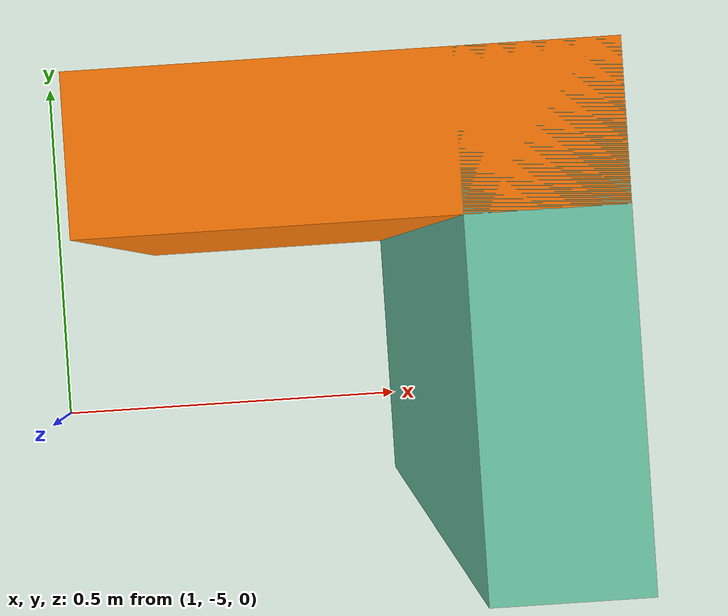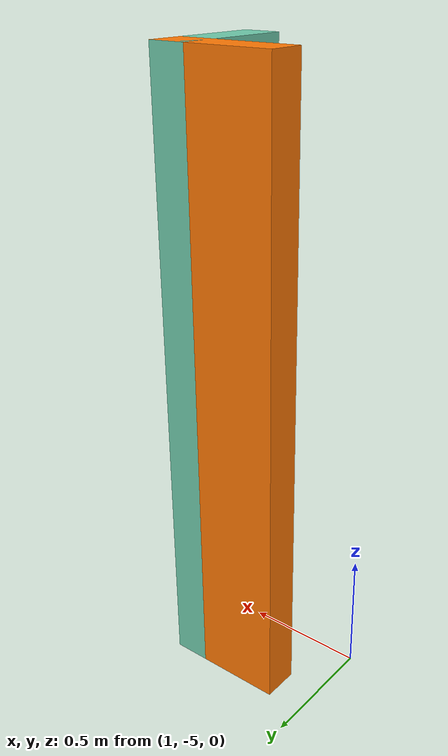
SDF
<?xml version='1.0'?>
<sdf version='1.6'>
  <model name='teal-wall'>
    <pose frame=''>1.395 -4.865 0 0 -0 0</pose>
    <link name='Wall_0'>
      <collision name='Wall_0_Collision'>
        <geometry>
          <box>
            <size>0.5 0.15 2.5</size>
          </box>
        </geometry>
        <pose frame=''>0 0 1.25 0 -0 0</pose>
      </collision>
      <visual name='Wall_0_Visual'>
        <pose frame=''>0 0 1.25 0 -0 0</pose>
        <geometry>
          <box>
            <size>0.5 0.15 2.5</size>
          </box>
        </geometry>
        <material>
          <script>
            <uri>file://media/materials/scripts/gazebo.material</uri>
            <name>Gazebo/Grey</name>
          </script>
          <ambient>0.996078 0.47451 0.0196078 1</ambient>
        </material>
        <meta>
          <layer>0</layer>
        </meta>
      </visual>
      <pose frame=''>0 0.175 0 0 -0 3.14159</pose>
    </link>
    <link name='Wall_2'>
      <collision name='Wall_2_Collision'>
        <geometry>
          <box>
            <size>0.5 0.15 2.5</size>
          </box>
        </geometry>
        <pose frame=''>0 0 1.25 0 -0 0</pose>
      </collision>
      <visual name='Wall_2_Visual'>
        <pose frame=''>0 0 1.25 0 -0 0</pose>
        <geometry>
          <box>
            <size>0.5 0.15 2.5</size>
          </box>
        </geometry>
        <material>
          <script>
            <uri>file://media/materials/scripts/gazebo.material</uri>
            <name>Gazebo/Grey</name>
          </script>
          <ambient>0.435294 0.796078 0.67451 1</ambient>
        </material>
        <meta>
          <layer>0</layer>
        </meta>
      </visual>
      <pose frame=''>0.175 0 0 0 0 -1.5708</pose>
    </link>
    <static>1</static>
  </model>
</sdf>
